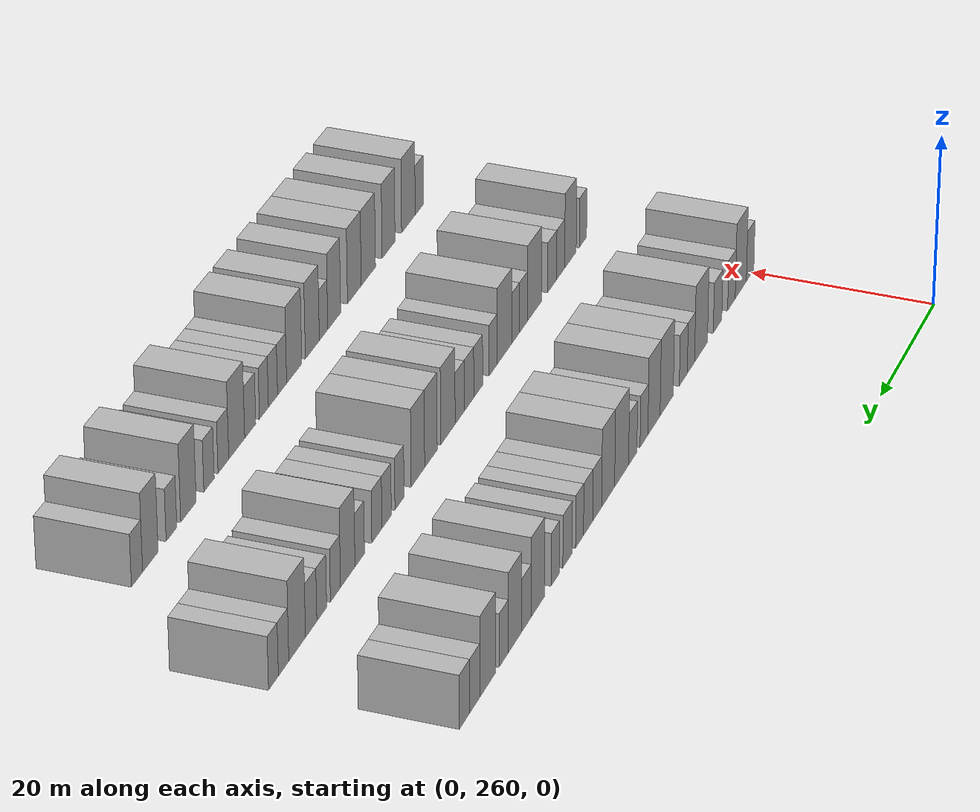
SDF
<sdf version="1.6">
 <world name="default">
  <model name="building_152">
   <static>1</static>
   <pose>25.0000 260.6562 0 0.000000 0.000000 0.000000</pose>
   <link name="link">
    <pose>0 0 3.00 0 0 0</pose>
    <collision name="collision"><geometry><box><size>10.0000 2.6528 6.0000</size></box></geometry></collision>
    <visual name="visual">
     <cast_shadows>0</cast_shadows>
     <geometry><box><size>10.0000 2.6528 6.0000</size></box></geometry>
     <material>
      <script>
       <uri>model://HANNAS_wall/materials/scripts</uri>
       <uri>model://HANNAS_wall/materials/textures</uri>
       <name>vrc/HANNAS_wall</name>
      </script>
     </material>
    </visual>
   </link>
  </model>
  <model name="building_153">
   <static>1</static>
   <pose>25.0000 263.9479 0 0.000000 0.000000 0.000000</pose>
   <link name="link">
    <pose>0 0 4.50 0 0 0</pose>
    <collision name="collision"><geometry><box><size>10.0000 3.9306 9.0000</size></box></geometry></collision>
    <visual name="visual">
     <cast_shadows>0</cast_shadows>
     <geometry><box><size>10.0000 3.9306 9.0000</size></box></geometry>
     <material>
      <script>
       <uri>model://HANNAS_wall/materials/scripts</uri>
       <uri>model://HANNAS_wall/materials/textures</uri>
       <name>vrc/HANNAS_wall</name>
      </script>
     </material>
    </visual>
   </link>
  </model>
  <model name="building_154">
   <static>1</static>
   <pose>25.0000 267.2325 0 0.000000 0.000000 0.000000</pose>
   <link name="link">
    <pose>0 0 3.00 0 0 0</pose>
    <collision name="collision"><geometry><box><size>10.0000 2.6387 6.0000</size></box></geometry></collision>
    <visual name="visual">
     <cast_shadows>0</cast_shadows>
     <geometry><box><size>10.0000 2.6387 6.0000</size></box></geometry>
     <material>
      <script>
       <uri>model://HANNAS_wall/materials/scripts</uri>
       <uri>model://HANNAS_wall/materials/textures</uri>
       <name>vrc/HANNAS_wall</name>
      </script>
     </material>
    </visual>
   </link>
  </model>
  <model name="building_155">
   <static>1</static>
   <pose>25.0000 272.0267 0 0.000000 0.000000 0.000000</pose>
   <link name="link">
    <pose>0 0 3.00 0 0 0</pose>
    <collision name="collision"><geometry><box><size>10.0000 2.9497 6.0000</size></box></geometry></collision>
    <visual name="visual">
     <cast_shadows>0</cast_shadows>
     <geometry><box><size>10.0000 2.9497 6.0000</size></box></geometry>
     <material>
      <script>
       <uri>model://HANNAS_wall/materials/scripts</uri>
       <uri>model://HANNAS_wall/materials/textures</uri>
       <name>vrc/HANNAS_wall</name>
      </script>
     </material>
    </visual>
   </link>
  </model>
  <model name="building_156">
   <static>1</static>
   <pose>25.0000 277.6796 0 0.000000 0.000000 0.000000</pose>
   <link name="link">
    <pose>0 0 4.50 0 0 0</pose>
    <collision name="collision"><geometry><box><size>10.0000 4.3561 9.0000</size></box></geometry></collision>
    <visual name="visual">
     <cast_shadows>0</cast_shadows>
     <geometry><box><size>10.0000 4.3561 9.0000</size></box></geometry>
     <material>
      <script>
       <uri>model://HANNAS_wall/materials/scripts</uri>
       <uri>model://HANNAS_wall/materials/textures</uri>
       <name>vrc/HANNAS_wall</name>
      </script>
     </material>
    </visual>
   </link>
  </model>
  <model name="building_157">
   <static>1</static>
   <pose>25.0000 281.0811 0 0.000000 0.000000 0.000000</pose>
   <link name="link">
    <pose>0 0 3.00 0 0 0</pose>
    <collision name="collision"><geometry><box><size>10.0000 2.4470 6.0000</size></box></geometry></collision>
    <visual name="visual">
     <cast_shadows>0</cast_shadows>
     <geometry><box><size>10.0000 2.4470 6.0000</size></box></geometry>
     <material>
      <script>
       <uri>model://HANNAS_wall/materials/scripts</uri>
       <uri>model://HANNAS_wall/materials/textures</uri>
       <name>vrc/HANNAS_wall</name>
      </script>
     </material>
    </visual>
   </link>
  </model>
  <model name="building_158">
   <static>1</static>
   <pose>25.0000 283.6265 0 0.000000 0.000000 0.000000</pose>
   <link name="link">
    <pose>0 0 3.00 0 0 0</pose>
    <collision name="collision"><geometry><box><size>10.0000 2.6438 6.0000</size></box></geometry></collision>
    <visual name="visual">
     <cast_shadows>0</cast_shadows>
     <geometry><box><size>10.0000 2.6438 6.0000</size></box></geometry>
     <material>
      <script>
       <uri>model://HANNAS_wall/materials/scripts</uri>
       <uri>model://HANNAS_wall/materials/textures</uri>
       <name>vrc/HANNAS_wall</name>
      </script>
     </material>
    </visual>
   </link>
  </model>
  <model name="building_159">
   <static>1</static>
   <pose>25.0000 289.1088 0 0.000000 0.000000 0.000000</pose>
   <link name="link">
    <pose>0 0 4.50 0 0 0</pose>
    <collision name="collision"><geometry><box><size>10.0000 4.3208 9.0000</size></box></geometry></collision>
    <visual name="visual">
     <cast_shadows>0</cast_shadows>
     <geometry><box><size>10.0000 4.3208 9.0000</size></box></geometry>
     <material>
      <script>
       <uri>model://HANNAS_wall/materials/scripts</uri>
       <uri>model://HANNAS_wall/materials/textures</uri>
       <name>vrc/HANNAS_wall</name>
      </script>
     </material>
    </visual>
   </link>
  </model>
  <model name="building_160">
   <static>1</static>
   <pose>25.0000 293.2338 0 0.000000 0.000000 0.000000</pose>
   <link name="link">
    <pose>0 0 4.50 0 0 0</pose>
    <collision name="collision"><geometry><box><size>10.0000 3.9292 9.0000</size></box></geometry></collision>
    <visual name="visual">
     <cast_shadows>0</cast_shadows>
     <geometry><box><size>10.0000 3.9292 9.0000</size></box></geometry>
     <material>
      <script>
       <uri>model://HANNAS_wall/materials/scripts</uri>
       <uri>model://HANNAS_wall/materials/textures</uri>
       <name>vrc/HANNAS_wall</name>
      </script>
     </material>
    </visual>
   </link>
  </model>
  <model name="building_161">
   <static>1</static>
   <pose>25.0000 296.4570 0 0.000000 0.000000 0.000000</pose>
   <link name="link">
    <pose>0 0 3.00 0 0 0</pose>
    <collision name="collision"><geometry><box><size>10.0000 2.5174 6.0000</size></box></geometry></collision>
    <visual name="visual">
     <cast_shadows>0</cast_shadows>
     <geometry><box><size>10.0000 2.5174 6.0000</size></box></geometry>
     <material>
      <script>
       <uri>model://HANNAS_wall/materials/scripts</uri>
       <uri>model://HANNAS_wall/materials/textures</uri>
       <name>vrc/HANNAS_wall</name>
      </script>
     </material>
    </visual>
   </link>
  </model>
  <model name="building_162">
   <static>1</static>
   <pose>25.0000 300.0321 0 0.000000 0.000000 0.000000</pose>
   <link name="link">
    <pose>0 0 3.00 0 0 0</pose>
    <collision name="collision"><geometry><box><size>10.0000 2.6328 6.0000</size></box></geometry></collision>
    <visual name="visual">
     <cast_shadows>0</cast_shadows>
     <geometry><box><size>10.0000 2.6328 6.0000</size></box></geometry>
     <material>
      <script>
       <uri>model://HANNAS_wall/materials/scripts</uri>
       <uri>model://HANNAS_wall/materials/textures</uri>
       <name>vrc/HANNAS_wall</name>
      </script>
     </material>
    </visual>
   </link>
  </model>
  <model name="building_163">
   <static>1</static>
   <pose>25.0000 303.5364 0 0.000000 0.000000 0.000000</pose>
   <link name="link">
    <pose>0 0 4.50 0 0 0</pose>
    <collision name="collision"><geometry><box><size>10.0000 4.3758 9.0000</size></box></geometry></collision>
    <visual name="visual">
     <cast_shadows>0</cast_shadows>
     <geometry><box><size>10.0000 4.3758 9.0000</size></box></geometry>
     <material>
      <script>
       <uri>model://HANNAS_wall/materials/scripts</uri>
       <uri>model://HANNAS_wall/materials/textures</uri>
       <name>vrc/HANNAS_wall</name>
      </script>
     </material>
    </visual>
   </link>
  </model>
  <model name="building_164">
   <static>1</static>
   <pose>25.0000 307.7463 0 0.000000 0.000000 0.000000</pose>
   <link name="link">
    <pose>0 0 4.50 0 0 0</pose>
    <collision name="collision"><geometry><box><size>10.0000 4.0440 9.0000</size></box></geometry></collision>
    <visual name="visual">
     <cast_shadows>0</cast_shadows>
     <geometry><box><size>10.0000 4.0440 9.0000</size></box></geometry>
     <material>
      <script>
       <uri>model://HANNAS_wall/materials/scripts</uri>
       <uri>model://HANNAS_wall/materials/textures</uri>
       <name>vrc/HANNAS_wall</name>
      </script>
     </material>
    </visual>
   </link>
  </model>
  <model name="building_165">
   <static>1</static>
   <pose>25.0000 311.1221 0 0.000000 0.000000 0.000000</pose>
   <link name="link">
    <pose>0 0 3.00 0 0 0</pose>
    <collision name="collision"><geometry><box><size>10.0000 2.7077 6.0000</size></box></geometry></collision>
    <visual name="visual">
     <cast_shadows>0</cast_shadows>
     <geometry><box><size>10.0000 2.7077 6.0000</size></box></geometry>
     <material>
      <script>
       <uri>model://HANNAS_wall/materials/scripts</uri>
       <uri>model://HANNAS_wall/materials/textures</uri>
       <name>vrc/HANNAS_wall</name>
      </script>
     </material>
    </visual>
   </link>
  </model>
  <model name="building_166">
   <static>1</static>
   <pose>25.0000 313.8813 0 0.000000 0.000000 0.000000</pose>
   <link name="link">
    <pose>0 0 3.00 0 0 0</pose>
    <collision name="collision"><geometry><box><size>10.0000 2.8106 6.0000</size></box></geometry></collision>
    <visual name="visual">
     <cast_shadows>0</cast_shadows>
     <geometry><box><size>10.0000 2.8106 6.0000</size></box></geometry>
     <material>
      <script>
       <uri>model://HANNAS_wall/materials/scripts</uri>
       <uri>model://HANNAS_wall/materials/textures</uri>
       <name>vrc/HANNAS_wall</name>
      </script>
     </material>
    </visual>
   </link>
  </model>
  <model name="building_167">
   <static>1</static>
   <pose>25.0000 316.4950 0 0.000000 0.000000 0.000000</pose>
   <link name="link">
    <pose>0 0 3.00 0 0 0</pose>
    <collision name="collision"><geometry><box><size>10.0000 2.4168 6.0000</size></box></geometry></collision>
    <visual name="visual">
     <cast_shadows>0</cast_shadows>
     <geometry><box><size>10.0000 2.4168 6.0000</size></box></geometry>
     <material>
      <script>
       <uri>model://HANNAS_wall/materials/scripts</uri>
       <uri>model://HANNAS_wall/materials/textures</uri>
       <name>vrc/HANNAS_wall</name>
      </script>
     </material>
    </visual>
   </link>
  </model>
  <model name="building_168">
   <static>1</static>
   <pose>25.0000 320.0985 0 0.000000 0.000000 0.000000</pose>
   <link name="link">
    <pose>0 0 3.00 0 0 0</pose>
    <collision name="collision"><geometry><box><size>10.0000 2.7902 6.0000</size></box></geometry></collision>
    <visual name="visual">
     <cast_shadows>0</cast_shadows>
     <geometry><box><size>10.0000 2.7902 6.0000</size></box></geometry>
     <material>
      <script>
       <uri>model://HANNAS_wall/materials/scripts</uri>
       <uri>model://HANNAS_wall/materials/textures</uri>
       <name>vrc/HANNAS_wall</name>
      </script>
     </material>
    </visual>
   </link>
  </model>
  <model name="building_169">
   <static>1</static>
   <pose>25.0000 323.6983 0 0.000000 0.000000 0.000000</pose>
   <link name="link">
    <pose>0 0 3.00 0 0 0</pose>
    <collision name="collision"><geometry><box><size>10.0000 2.4095 6.0000</size></box></geometry></collision>
    <visual name="visual">
     <cast_shadows>0</cast_shadows>
     <geometry><box><size>10.0000 2.4095 6.0000</size></box></geometry>
     <material>
      <script>
       <uri>model://HANNAS_wall/materials/scripts</uri>
       <uri>model://HANNAS_wall/materials/textures</uri>
       <name>vrc/HANNAS_wall</name>
      </script>
     </material>
    </visual>
   </link>
  </model>
  <model name="building_170">
   <static>1</static>
   <pose>25.0000 328.8222 0 0.000000 0.000000 0.000000</pose>
   <link name="link">
    <pose>0 0 4.50 0 0 0</pose>
    <collision name="collision"><geometry><box><size>10.0000 3.8383 9.0000</size></box></geometry></collision>
    <visual name="visual">
     <cast_shadows>0</cast_shadows>
     <geometry><box><size>10.0000 3.8383 9.0000</size></box></geometry>
     <material>
      <script>
       <uri>model://HANNAS_wall/materials/scripts</uri>
       <uri>model://HANNAS_wall/materials/textures</uri>
       <name>vrc/HANNAS_wall</name>
      </script>
     </material>
    </visual>
   </link>
  </model>
  <model name="building_171">
   <static>1</static>
   <pose>25.0000 332.1052 0 0.000000 0.000000 0.000000</pose>
   <link name="link">
    <pose>0 0 3.00 0 0 0</pose>
    <collision name="collision"><geometry><box><size>10.0000 2.7276 6.0000</size></box></geometry></collision>
    <visual name="visual">
     <cast_shadows>0</cast_shadows>
     <geometry><box><size>10.0000 2.7276 6.0000</size></box></geometry>
     <material>
      <script>
       <uri>model://HANNAS_wall/materials/scripts</uri>
       <uri>model://HANNAS_wall/materials/textures</uri>
       <name>vrc/HANNAS_wall</name>
      </script>
     </material>
    </visual>
   </link>
  </model>
  <model name="building_172">
   <static>1</static>
   <pose>25.0000 335.3537 0 0.000000 0.000000 0.000000</pose>
   <link name="link">
    <pose>0 0 4.50 0 0 0</pose>
    <collision name="collision"><geometry><box><size>10.0000 3.7694 9.0000</size></box></geometry></collision>
    <visual name="visual">
     <cast_shadows>0</cast_shadows>
     <geometry><box><size>10.0000 3.7694 9.0000</size></box></geometry>
     <material>
      <script>
       <uri>model://HANNAS_wall/materials/scripts</uri>
       <uri>model://HANNAS_wall/materials/textures</uri>
       <name>vrc/HANNAS_wall</name>
      </script>
     </material>
    </visual>
   </link>
  </model>
  <model name="building_173">
   <static>1</static>
   <pose>25.0000 338.5391 0 0.000000 0.000000 0.000000</pose>
   <link name="link">
    <pose>0 0 3.00 0 0 0</pose>
    <collision name="collision"><geometry><box><size>10.0000 2.6015 6.0000</size></box></geometry></collision>
    <visual name="visual">
     <cast_shadows>0</cast_shadows>
     <geometry><box><size>10.0000 2.6015 6.0000</size></box></geometry>
     <material>
      <script>
       <uri>model://HANNAS_wall/materials/scripts</uri>
       <uri>model://HANNAS_wall/materials/textures</uri>
       <name>vrc/HANNAS_wall</name>
      </script>
     </material>
    </visual>
   </link>
  </model>
  <model name="building_174">
   <static>1</static>
   <pose>25.0000 343.0338 0 0.000000 0.000000 0.000000</pose>
   <link name="link">
    <pose>0 0 4.50 0 0 0</pose>
    <collision name="collision"><geometry><box><size>10.0000 4.3879 9.0000</size></box></geometry></collision>
    <visual name="visual">
     <cast_shadows>0</cast_shadows>
     <geometry><box><size>10.0000 4.3879 9.0000</size></box></geometry>
     <material>
      <script>
       <uri>model://HANNAS_wall/materials/scripts</uri>
       <uri>model://HANNAS_wall/materials/textures</uri>
       <name>vrc/HANNAS_wall</name>
      </script>
     </material>
    </visual>
   </link>
  </model>
  <model name="building_175">
   <static>1</static>
   <pose>25.0000 346.5898 0 0.000000 0.000000 0.000000</pose>
   <link name="link">
    <pose>0 0 3.00 0 0 0</pose>
    <collision name="collision"><geometry><box><size>10.0000 2.7241 6.0000</size></box></geometry></collision>
    <visual name="visual">
     <cast_shadows>0</cast_shadows>
     <geometry><box><size>10.0000 2.7241 6.0000</size></box></geometry>
     <material>
      <script>
       <uri>model://HANNAS_wall/materials/scripts</uri>
       <uri>model://HANNAS_wall/materials/textures</uri>
       <name>vrc/HANNAS_wall</name>
      </script>
     </material>
    </visual>
   </link>
  </model>
  <model name="building_176">
   <static>1</static>
   <pose>25.0000 349.3690 0 0.000000 0.000000 0.000000</pose>
   <link name="link">
    <pose>0 0 3.00 0 0 0</pose>
    <collision name="collision"><geometry><box><size>10.0000 2.8345 6.0000</size></box></geometry></collision>
    <visual name="visual">
     <cast_shadows>0</cast_shadows>
     <geometry><box><size>10.0000 2.8345 6.0000</size></box></geometry>
     <material>
      <script>
       <uri>model://HANNAS_wall/materials/scripts</uri>
       <uri>model://HANNAS_wall/materials/textures</uri>
       <name>vrc/HANNAS_wall</name>
      </script>
     </material>
    </visual>
   </link>
  </model>
  <model name="building_331">
   <static>1</static>
   <pose>44.0000 259.7455 0 0.000000 0.000000 0.000000</pose>
   <link name="link">
    <pose>0 0 3.00 0 0 0</pose>
    <collision name="collision"><geometry><box><size>10.0000 2.4365 6.0000</size></box></geometry></collision>
    <visual name="visual">
     <cast_shadows>0</cast_shadows>
     <geometry><box><size>10.0000 2.4365 6.0000</size></box></geometry>
     <material>
      <script>
       <uri>model://HANNAS_wall/materials/scripts</uri>
       <uri>model://HANNAS_wall/materials/textures</uri>
       <name>vrc/HANNAS_wall</name>
      </script>
     </material>
    </visual>
   </link>
  </model>
  <model name="building_332">
   <static>1</static>
   <pose>44.0000 263.8436 0 0.000000 0.000000 0.000000</pose>
   <link name="link">
    <pose>0 0 4.50 0 0 0</pose>
    <collision name="collision"><geometry><box><size>10.0000 3.7598 9.0000</size></box></geometry></collision>
    <visual name="visual">
     <cast_shadows>0</cast_shadows>
     <geometry><box><size>10.0000 3.7598 9.0000</size></box></geometry>
     <material>
      <script>
       <uri>model://HANNAS_wall/materials/scripts</uri>
       <uri>model://HANNAS_wall/materials/textures</uri>
       <name>vrc/HANNAS_wall</name>
      </script>
     </material>
    </visual>
   </link>
  </model>
  <model name="building_333">
   <static>1</static>
   <pose>44.0000 267.0343 0 0.000000 0.000000 0.000000</pose>
   <link name="link">
    <pose>0 0 3.00 0 0 0</pose>
    <collision name="collision"><geometry><box><size>10.0000 2.6216 6.0000</size></box></geometry></collision>
    <visual name="visual">
     <cast_shadows>0</cast_shadows>
     <geometry><box><size>10.0000 2.6216 6.0000</size></box></geometry>
     <material>
      <script>
       <uri>model://HANNAS_wall/materials/scripts</uri>
       <uri>model://HANNAS_wall/materials/textures</uri>
       <name>vrc/HANNAS_wall</name>
      </script>
     </material>
    </visual>
   </link>
  </model>
  <model name="building_334">
   <static>1</static>
   <pose>44.0000 269.7810 0 0.000000 0.000000 0.000000</pose>
   <link name="link">
    <pose>0 0 3.00 0 0 0</pose>
    <collision name="collision"><geometry><box><size>10.0000 2.8717 6.0000</size></box></geometry></collision>
    <visual name="visual">
     <cast_shadows>0</cast_shadows>
     <geometry><box><size>10.0000 2.8717 6.0000</size></box></geometry>
     <material>
      <script>
       <uri>model://HANNAS_wall/materials/scripts</uri>
       <uri>model://HANNAS_wall/materials/textures</uri>
       <name>vrc/HANNAS_wall</name>
      </script>
     </material>
    </visual>
   </link>
  </model>
  <model name="building_335">
   <static>1</static>
   <pose>44.0000 275.4062 0 0.000000 0.000000 0.000000</pose>
   <link name="link">
    <pose>0 0 4.50 0 0 0</pose>
    <collision name="collision"><geometry><box><size>10.0000 4.3787 9.0000</size></box></geometry></collision>
    <visual name="visual">
     <cast_shadows>0</cast_shadows>
     <geometry><box><size>10.0000 4.3787 9.0000</size></box></geometry>
     <material>
      <script>
       <uri>model://HANNAS_wall/materials/scripts</uri>
       <uri>model://HANNAS_wall/materials/textures</uri>
       <name>vrc/HANNAS_wall</name>
      </script>
     </material>
    </visual>
   </link>
  </model>
  <model name="building_336">
   <static>1</static>
   <pose>44.0000 278.8624 0 0.000000 0.000000 0.000000</pose>
   <link name="link">
    <pose>0 0 3.00 0 0 0</pose>
    <collision name="collision"><geometry><box><size>10.0000 2.5337 6.0000</size></box></geometry></collision>
    <visual name="visual">
     <cast_shadows>0</cast_shadows>
     <geometry><box><size>10.0000 2.5337 6.0000</size></box></geometry>
     <material>
      <script>
       <uri>model://HANNAS_wall/materials/scripts</uri>
       <uri>model://HANNAS_wall/materials/textures</uri>
       <name>vrc/HANNAS_wall</name>
      </script>
     </material>
    </visual>
   </link>
  </model>
  <model name="building_337">
   <static>1</static>
   <pose>44.0000 281.3531 0 0.000000 0.000000 0.000000</pose>
   <link name="link">
    <pose>0 0 3.00 0 0 0</pose>
    <collision name="collision"><geometry><box><size>10.0000 2.4475 6.0000</size></box></geometry></collision>
    <visual name="visual">
     <cast_shadows>0</cast_shadows>
     <geometry><box><size>10.0000 2.4475 6.0000</size></box></geometry>
     <material>
      <script>
       <uri>model://HANNAS_wall/materials/scripts</uri>
       <uri>model://HANNAS_wall/materials/textures</uri>
       <name>vrc/HANNAS_wall</name>
      </script>
     </material>
    </visual>
   </link>
  </model>
  <model name="building_338">
   <static>1</static>
   <pose>44.0000 284.8020 0 0.000000 0.000000 0.000000</pose>
   <link name="link">
    <pose>0 0 4.50 0 0 0</pose>
    <collision name="collision"><geometry><box><size>10.0000 4.4504 9.0000</size></box></geometry></collision>
    <visual name="visual">
     <cast_shadows>0</cast_shadows>
     <geometry><box><size>10.0000 4.4504 9.0000</size></box></geometry>
     <material>
      <script>
       <uri>model://HANNAS_wall/materials/scripts</uri>
       <uri>model://HANNAS_wall/materials/textures</uri>
       <name>vrc/HANNAS_wall</name>
      </script>
     </material>
    </visual>
   </link>
  </model>
  <model name="building_339">
   <static>1</static>
   <pose>44.0000 288.2627 0 0.000000 0.000000 0.000000</pose>
   <link name="link">
    <pose>0 0 3.00 0 0 0</pose>
    <collision name="collision"><geometry><box><size>10.0000 2.4711 6.0000</size></box></geometry></collision>
    <visual name="visual">
     <cast_shadows>0</cast_shadows>
     <geometry><box><size>10.0000 2.4711 6.0000</size></box></geometry>
     <material>
      <script>
       <uri>model://HANNAS_wall/materials/scripts</uri>
       <uri>model://HANNAS_wall/materials/textures</uri>
       <name>vrc/HANNAS_wall</name>
      </script>
     </material>
    </visual>
   </link>
  </model>
  <model name="building_340">
   <static>1</static>
   <pose>44.0000 292.8372 0 0.000000 0.000000 0.000000</pose>
   <link name="link">
    <pose>0 0 3.00 0 0 0</pose>
    <collision name="collision"><geometry><box><size>10.0000 2.6779 6.0000</size></box></geometry></collision>
    <visual name="visual">
     <cast_shadows>0</cast_shadows>
     <geometry><box><size>10.0000 2.6779 6.0000</size></box></geometry>
     <material>
      <script>
       <uri>model://HANNAS_wall/materials/scripts</uri>
       <uri>model://HANNAS_wall/materials/textures</uri>
       <name>vrc/HANNAS_wall</name>
      </script>
     </material>
    </visual>
   </link>
  </model>
  <model name="building_341">
   <static>1</static>
   <pose>44.0000 295.6051 0 0.000000 0.000000 0.000000</pose>
   <link name="link">
    <pose>0 0 3.00 0 0 0</pose>
    <collision name="collision"><geometry><box><size>10.0000 2.8579 6.0000</size></box></geometry></collision>
    <visual name="visual">
     <cast_shadows>0</cast_shadows>
     <geometry><box><size>10.0000 2.8579 6.0000</size></box></geometry>
     <material>
      <script>
       <uri>model://HANNAS_wall/materials/scripts</uri>
       <uri>model://HANNAS_wall/materials/textures</uri>
       <name>vrc/HANNAS_wall</name>
      </script>
     </material>
    </visual>
   </link>
  </model>
  <model name="building_342">
   <static>1</static>
   <pose>44.0000 298.3727 0 0.000000 0.000000 0.000000</pose>
   <link name="link">
    <pose>0 0 3.00 0 0 0</pose>
    <collision name="collision"><geometry><box><size>10.0000 2.6772 6.0000</size></box></geometry></collision>
    <visual name="visual">
     <cast_shadows>0</cast_shadows>
     <geometry><box><size>10.0000 2.6772 6.0000</size></box></geometry>
     <material>
      <script>
       <uri>model://HANNAS_wall/materials/scripts</uri>
       <uri>model://HANNAS_wall/materials/textures</uri>
       <name>vrc/HANNAS_wall</name>
      </script>
     </material>
    </visual>
   </link>
  </model>
  <model name="building_343">
   <static>1</static>
   <pose>44.0000 301.8395 0 0.000000 0.000000 0.000000</pose>
   <link name="link">
    <pose>0 0 4.50 0 0 0</pose>
    <collision name="collision"><geometry><box><size>10.0000 4.2565 9.0000</size></box></geometry></collision>
    <visual name="visual">
     <cast_shadows>0</cast_shadows>
     <geometry><box><size>10.0000 4.2565 9.0000</size></box></geometry>
     <material>
      <script>
       <uri>model://HANNAS_wall/materials/scripts</uri>
       <uri>model://HANNAS_wall/materials/textures</uri>
       <name>vrc/HANNAS_wall</name>
      </script>
     </material>
    </visual>
   </link>
  </model>
  <model name="building_344">
   <static>1</static>
   <pose>44.0000 306.7835 0 0.000000 0.000000 0.000000</pose>
   <link name="link">
    <pose>0 0 4.50 0 0 0</pose>
    <collision name="collision"><geometry><box><size>10.0000 3.6314 9.0000</size></box></geometry></collision>
    <visual name="visual">
     <cast_shadows>0</cast_shadows>
     <geometry><box><size>10.0000 3.6314 9.0000</size></box></geometry>
     <material>
      <script>
       <uri>model://HANNAS_wall/materials/scripts</uri>
       <uri>model://HANNAS_wall/materials/textures</uri>
       <name>vrc/HANNAS_wall</name>
      </script>
     </material>
    </visual>
   </link>
  </model>
  <model name="building_345">
   <static>1</static>
   <pose>44.0000 310.5303 0 0.000000 0.000000 0.000000</pose>
   <link name="link">
    <pose>0 0 4.50 0 0 0</pose>
    <collision name="collision"><geometry><box><size>10.0000 3.8622 9.0000</size></box></geometry></collision>
    <visual name="visual">
     <cast_shadows>0</cast_shadows>
     <geometry><box><size>10.0000 3.8622 9.0000</size></box></geometry>
     <material>
      <script>
       <uri>model://HANNAS_wall/materials/scripts</uri>
       <uri>model://HANNAS_wall/materials/textures</uri>
       <name>vrc/HANNAS_wall</name>
      </script>
     </material>
    </visual>
   </link>
  </model>
  <model name="building_346">
   <static>1</static>
   <pose>44.0000 315.7579 0 0.000000 0.000000 0.000000</pose>
   <link name="link">
    <pose>0 0 3.00 0 0 0</pose>
    <collision name="collision"><geometry><box><size>10.0000 2.5930 6.0000</size></box></geometry></collision>
    <visual name="visual">
     <cast_shadows>0</cast_shadows>
     <geometry><box><size>10.0000 2.5930 6.0000</size></box></geometry>
     <material>
      <script>
       <uri>model://HANNAS_wall/materials/scripts</uri>
       <uri>model://HANNAS_wall/materials/textures</uri>
       <name>vrc/HANNAS_wall</name>
      </script>
     </material>
    </visual>
   </link>
  </model>
  <model name="building_347">
   <static>1</static>
   <pose>44.0000 319.3584 0 0.000000 0.000000 0.000000</pose>
   <link name="link">
    <pose>0 0 3.00 0 0 0</pose>
    <collision name="collision"><geometry><box><size>10.0000 2.6078 6.0000</size></box></geometry></collision>
    <visual name="visual">
     <cast_shadows>0</cast_shadows>
     <geometry><box><size>10.0000 2.6078 6.0000</size></box></geometry>
     <material>
      <script>
       <uri>model://HANNAS_wall/materials/scripts</uri>
       <uri>model://HANNAS_wall/materials/textures</uri>
       <name>vrc/HANNAS_wall</name>
      </script>
     </material>
    </visual>
   </link>
  </model>
  <model name="building_348">
   <static>1</static>
   <pose>44.0000 322.0684 0 0.000000 0.000000 0.000000</pose>
   <link name="link">
    <pose>0 0 3.00 0 0 0</pose>
    <collision name="collision"><geometry><box><size>10.0000 2.8123 6.0000</size></box></geometry></collision>
    <visual name="visual">
     <cast_shadows>0</cast_shadows>
     <geometry><box><size>10.0000 2.8123 6.0000</size></box></geometry>
     <material>
      <script>
       <uri>model://HANNAS_wall/materials/scripts</uri>
       <uri>model://HANNAS_wall/materials/textures</uri>
       <name>vrc/HANNAS_wall</name>
      </script>
     </material>
    </visual>
   </link>
  </model>
  <model name="building_349">
   <static>1</static>
   <pose>44.0000 326.7690 0 0.000000 0.000000 0.000000</pose>
   <link name="link">
    <pose>0 0 3.00 0 0 0</pose>
    <collision name="collision"><geometry><box><size>10.0000 2.5888 6.0000</size></box></geometry></collision>
    <visual name="visual">
     <cast_shadows>0</cast_shadows>
     <geometry><box><size>10.0000 2.5888 6.0000</size></box></geometry>
     <material>
      <script>
       <uri>model://HANNAS_wall/materials/scripts</uri>
       <uri>model://HANNAS_wall/materials/textures</uri>
       <name>vrc/HANNAS_wall</name>
      </script>
     </material>
    </visual>
   </link>
  </model>
  <model name="building_350">
   <static>1</static>
   <pose>44.0000 330.0136 0 0.000000 0.000000 0.000000</pose>
   <link name="link">
    <pose>0 0 4.50 0 0 0</pose>
    <collision name="collision"><geometry><box><size>10.0000 3.9004 9.0000</size></box></geometry></collision>
    <visual name="visual">
     <cast_shadows>0</cast_shadows>
     <geometry><box><size>10.0000 3.9004 9.0000</size></box></geometry>
     <material>
      <script>
       <uri>model://HANNAS_wall/materials/scripts</uri>
       <uri>model://HANNAS_wall/materials/textures</uri>
       <name>vrc/HANNAS_wall</name>
      </script>
     </material>
    </visual>
   </link>
  </model>
  <model name="building_351">
   <static>1</static>
   <pose>44.0000 333.3136 0 0.000000 0.000000 0.000000</pose>
   <link name="link">
    <pose>0 0 3.00 0 0 0</pose>
    <collision name="collision"><geometry><box><size>10.0000 2.6996 6.0000</size></box></geometry></collision>
    <visual name="visual">
     <cast_shadows>0</cast_shadows>
     <geometry><box><size>10.0000 2.6996 6.0000</size></box></geometry>
     <material>
      <script>
       <uri>model://HANNAS_wall/materials/scripts</uri>
       <uri>model://HANNAS_wall/materials/textures</uri>
       <name>vrc/HANNAS_wall</name>
      </script>
     </material>
    </visual>
   </link>
  </model>
  <model name="building_352">
   <static>1</static>
   <pose>44.0000 336.9551 0 0.000000 0.000000 0.000000</pose>
   <link name="link">
    <pose>0 0 3.00 0 0 0</pose>
    <collision name="collision"><geometry><box><size>10.0000 2.5833 6.0000</size></box></geometry></collision>
    <visual name="visual">
     <cast_shadows>0</cast_shadows>
     <geometry><box><size>10.0000 2.5833 6.0000</size></box></geometry>
     <material>
      <script>
       <uri>model://HANNAS_wall/materials/scripts</uri>
       <uri>model://HANNAS_wall/materials/textures</uri>
       <name>vrc/HANNAS_wall</name>
      </script>
     </material>
    </visual>
   </link>
  </model>
  <model name="building_353">
   <static>1</static>
   <pose>44.0000 339.7308 0 0.000000 0.000000 0.000000</pose>
   <link name="link">
    <pose>0 0 3.00 0 0 0</pose>
    <collision name="collision"><geometry><box><size>10.0000 2.9680 6.0000</size></box></geometry></collision>
    <visual name="visual">
     <cast_shadows>0</cast_shadows>
     <geometry><box><size>10.0000 2.9680 6.0000</size></box></geometry>
     <material>
      <script>
       <uri>model://HANNAS_wall/materials/scripts</uri>
       <uri>model://HANNAS_wall/materials/textures</uri>
       <name>vrc/HANNAS_wall</name>
      </script>
     </material>
    </visual>
   </link>
  </model>
  <model name="building_354">
   <static>1</static>
   <pose>44.0000 343.3724 0 0.000000 0.000000 0.000000</pose>
   <link name="link">
    <pose>0 0 4.50 0 0 0</pose>
    <collision name="collision"><geometry><box><size>10.0000 4.3152 9.0000</size></box></geometry></collision>
    <visual name="visual">
     <cast_shadows>0</cast_shadows>
     <geometry><box><size>10.0000 4.3152 9.0000</size></box></geometry>
     <material>
      <script>
       <uri>model://HANNAS_wall/materials/scripts</uri>
       <uri>model://HANNAS_wall/materials/textures</uri>
       <name>vrc/HANNAS_wall</name>
      </script>
     </material>
    </visual>
   </link>
  </model>
  <model name="building_355">
   <static>1</static>
   <pose>44.0000 346.8639 0 0.000000 0.000000 0.000000</pose>
   <link name="link">
    <pose>0 0 3.00 0 0 0</pose>
    <collision name="collision"><geometry><box><size>10.0000 2.6679 6.0000</size></box></geometry></collision>
    <visual name="visual">
     <cast_shadows>0</cast_shadows>
     <geometry><box><size>10.0000 2.6679 6.0000</size></box></geometry>
     <material>
      <script>
       <uri>model://HANNAS_wall/materials/scripts</uri>
       <uri>model://HANNAS_wall/materials/textures</uri>
       <name>vrc/HANNAS_wall</name>
      </script>
     </material>
    </visual>
   </link>
  </model>
  <model name="building_356">
   <static>1</static>
   <pose>44.0000 349.4435 0 0.000000 0.000000 0.000000</pose>
   <link name="link">
    <pose>0 0 3.00 0 0 0</pose>
    <collision name="collision"><geometry><box><size>10.0000 2.4914 6.0000</size></box></geometry></collision>
    <visual name="visual">
     <cast_shadows>0</cast_shadows>
     <geometry><box><size>10.0000 2.4914 6.0000</size></box></geometry>
     <material>
      <script>
       <uri>model://HANNAS_wall/materials/scripts</uri>
       <uri>model://HANNAS_wall/materials/textures</uri>
       <name>vrc/HANNAS_wall</name>
      </script>
     </material>
    </visual>
   </link>
  </model>
  <model name="building_510">
   <static>1</static>
   <pose>63.0000 258.7900 0 0.000000 0.000000 0.000000</pose>
   <link name="link">
    <pose>0 0 3.00 0 0 0</pose>
    <collision name="collision"><geometry><box><size>10.0000 2.5789 6.0000</size></box></geometry></collision>
    <visual name="visual">
     <cast_shadows>0</cast_shadows>
     <geometry><box><size>10.0000 2.5789 6.0000</size></box></geometry>
     <material>
      <script>
       <uri>model://HANNAS_wall/materials/scripts</uri>
       <uri>model://HANNAS_wall/materials/textures</uri>
       <name>vrc/HANNAS_wall</name>
      </script>
     </material>
    </visual>
   </link>
  </model>
  <model name="building_511">
   <static>1</static>
   <pose>63.0000 262.1908 0 0.000000 0.000000 0.000000</pose>
   <link name="link">
    <pose>0 0 4.50 0 0 0</pose>
    <collision name="collision"><geometry><box><size>10.0000 4.2228 9.0000</size></box></geometry></collision>
    <visual name="visual">
     <cast_shadows>0</cast_shadows>
     <geometry><box><size>10.0000 4.2228 9.0000</size></box></geometry>
     <material>
      <script>
       <uri>model://HANNAS_wall/materials/scripts</uri>
       <uri>model://HANNAS_wall/materials/textures</uri>
       <name>vrc/HANNAS_wall</name>
      </script>
     </material>
    </visual>
   </link>
  </model>
  <model name="building_512">
   <static>1</static>
   <pose>63.0000 268.2525 0 0.000000 0.000000 0.000000</pose>
   <link name="link">
    <pose>0 0 4.50 0 0 0</pose>
    <collision name="collision"><geometry><box><size>10.0000 3.9005 9.0000</size></box></geometry></collision>
    <visual name="visual">
     <cast_shadows>0</cast_shadows>
     <geometry><box><size>10.0000 3.9005 9.0000</size></box></geometry>
     <material>
      <script>
       <uri>model://HANNAS_wall/materials/scripts</uri>
       <uri>model://HANNAS_wall/materials/textures</uri>
       <name>vrc/HANNAS_wall</name>
      </script>
     </material>
    </visual>
   </link>
  </model>
  <model name="building_513">
   <static>1</static>
   <pose>63.0000 274.3253 0 0.000000 0.000000 0.000000</pose>
   <link name="link">
    <pose>0 0 4.50 0 0 0</pose>
    <collision name="collision"><geometry><box><size>10.0000 4.2452 9.0000</size></box></geometry></collision>
    <visual name="visual">
     <cast_shadows>0</cast_shadows>
     <geometry><box><size>10.0000 4.2452 9.0000</size></box></geometry>
     <material>
      <script>
       <uri>model://HANNAS_wall/materials/scripts</uri>
       <uri>model://HANNAS_wall/materials/textures</uri>
       <name>vrc/HANNAS_wall</name>
      </script>
     </material>
    </visual>
   </link>
  </model>
  <model name="building_514">
   <static>1</static>
   <pose>63.0000 278.4736 0 0.000000 0.000000 0.000000</pose>
   <link name="link">
    <pose>0 0 4.50 0 0 0</pose>
    <collision name="collision"><geometry><box><size>10.0000 4.0515 9.0000</size></box></geometry></collision>
    <visual name="visual">
     <cast_shadows>0</cast_shadows>
     <geometry><box><size>10.0000 4.0515 9.0000</size></box></geometry>
     <material>
      <script>
       <uri>model://HANNAS_wall/materials/scripts</uri>
       <uri>model://HANNAS_wall/materials/textures</uri>
       <name>vrc/HANNAS_wall</name>
      </script>
     </material>
    </visual>
   </link>
  </model>
  <model name="building_515">
   <static>1</static>
   <pose>63.0000 284.3612 0 0.000000 0.000000 0.000000</pose>
   <link name="link">
    <pose>0 0 4.50 0 0 0</pose>
    <collision name="collision"><geometry><box><size>10.0000 3.7237 9.0000</size></box></geometry></collision>
    <visual name="visual">
     <cast_shadows>0</cast_shadows>
     <geometry><box><size>10.0000 3.7237 9.0000</size></box></geometry>
     <material>
      <script>
       <uri>model://HANNAS_wall/materials/scripts</uri>
       <uri>model://HANNAS_wall/materials/textures</uri>
       <name>vrc/HANNAS_wall</name>
      </script>
     </material>
    </visual>
   </link>
  </model>
  <model name="building_516">
   <static>1</static>
   <pose>63.0000 287.4367 0 0.000000 0.000000 0.000000</pose>
   <link name="link">
    <pose>0 0 3.00 0 0 0</pose>
    <collision name="collision"><geometry><box><size>10.0000 2.4273 6.0000</size></box></geometry></collision>
    <visual name="visual">
     <cast_shadows>0</cast_shadows>
     <geometry><box><size>10.0000 2.4273 6.0000</size></box></geometry>
     <material>
      <script>
       <uri>model://HANNAS_wall/materials/scripts</uri>
       <uri>model://HANNAS_wall/materials/textures</uri>
       <name>vrc/HANNAS_wall</name>
      </script>
     </material>
    </visual>
   </link>
  </model>
  <model name="building_517">
   <static>1</static>
   <pose>63.0000 290.6437 0 0.000000 0.000000 0.000000</pose>
   <link name="link">
    <pose>0 0 4.50 0 0 0</pose>
    <collision name="collision"><geometry><box><size>10.0000 3.9866 9.0000</size></box></geometry></collision>
    <visual name="visual">
     <cast_shadows>0</cast_shadows>
     <geometry><box><size>10.0000 3.9866 9.0000</size></box></geometry>
     <material>
      <script>
       <uri>model://HANNAS_wall/materials/scripts</uri>
       <uri>model://HANNAS_wall/materials/textures</uri>
       <name>vrc/HANNAS_wall</name>
      </script>
     </material>
    </visual>
   </link>
  </model>
  <model name="building_518">
   <static>1</static>
   <pose>63.0000 295.7679 0 0.000000 0.000000 0.000000</pose>
   <link name="link">
    <pose>0 0 4.50 0 0 0</pose>
    <collision name="collision"><geometry><box><size>10.0000 4.2618 9.0000</size></box></geometry></collision>
    <visual name="visual">
     <cast_shadows>0</cast_shadows>
     <geometry><box><size>10.0000 4.2618 9.0000</size></box></geometry>
     <material>
      <script>
       <uri>model://HANNAS_wall/materials/scripts</uri>
       <uri>model://HANNAS_wall/materials/textures</uri>
       <name>vrc/HANNAS_wall</name>
      </script>
     </material>
    </visual>
   </link>
  </model>
  <model name="building_519">
   <static>1</static>
   <pose>63.0000 299.1558 0 0.000000 0.000000 0.000000</pose>
   <link name="link">
    <pose>0 0 3.00 0 0 0</pose>
    <collision name="collision"><geometry><box><size>10.0000 2.5142 6.0000</size></box></geometry></collision>
    <visual name="visual">
     <cast_shadows>0</cast_shadows>
     <geometry><box><size>10.0000 2.5142 6.0000</size></box></geometry>
     <material>
      <script>
       <uri>model://HANNAS_wall/materials/scripts</uri>
       <uri>model://HANNAS_wall/materials/textures</uri>
       <name>vrc/HANNAS_wall</name>
      </script>
     </material>
    </visual>
   </link>
  </model>
  <model name="building_520">
   <static>1</static>
   <pose>63.0000 301.6689 0 0.000000 0.000000 0.000000</pose>
   <link name="link">
    <pose>0 0 3.00 0 0 0</pose>
    <collision name="collision"><geometry><box><size>10.0000 2.5119 6.0000</size></box></geometry></collision>
    <visual name="visual">
     <cast_shadows>0</cast_shadows>
     <geometry><box><size>10.0000 2.5119 6.0000</size></box></geometry>
     <material>
      <script>
       <uri>model://HANNAS_wall/materials/scripts</uri>
       <uri>model://HANNAS_wall/materials/textures</uri>
       <name>vrc/HANNAS_wall</name>
      </script>
     </material>
    </visual>
   </link>
  </model>
  <model name="building_521">
   <static>1</static>
   <pose>63.0000 304.1589 0 0.000000 0.000000 0.000000</pose>
   <link name="link">
    <pose>0 0 3.00 0 0 0</pose>
    <collision name="collision"><geometry><box><size>10.0000 2.4683 6.0000</size></box></geometry></collision>
    <visual name="visual">
     <cast_shadows>0</cast_shadows>
     <geometry><box><size>10.0000 2.4683 6.0000</size></box></geometry>
     <material>
      <script>
       <uri>model://HANNAS_wall/materials/scripts</uri>
       <uri>model://HANNAS_wall/materials/textures</uri>
       <name>vrc/HANNAS_wall</name>
      </script>
     </material>
    </visual>
   </link>
  </model>
  <model name="building_522">
   <static>1</static>
   <pose>63.0000 307.8898 0 0.000000 0.000000 0.000000</pose>
   <link name="link">
    <pose>0 0 3.00 0 0 0</pose>
    <collision name="collision"><geometry><box><size>10.0000 2.9934 6.0000</size></box></geometry></collision>
    <visual name="visual">
     <cast_shadows>0</cast_shadows>
     <geometry><box><size>10.0000 2.9934 6.0000</size></box></geometry>
     <material>
      <script>
       <uri>model://HANNAS_wall/materials/scripts</uri>
       <uri>model://HANNAS_wall/materials/textures</uri>
       <name>vrc/HANNAS_wall</name>
      </script>
     </material>
    </visual>
   </link>
  </model>
  <model name="building_523">
   <static>1</static>
   <pose>63.0000 311.5158 0 0.000000 0.000000 0.000000</pose>
   <link name="link">
    <pose>0 0 4.50 0 0 0</pose>
    <collision name="collision"><geometry><box><size>10.0000 4.2586 9.0000</size></box></geometry></collision>
    <visual name="visual">
     <cast_shadows>0</cast_shadows>
     <geometry><box><size>10.0000 4.2586 9.0000</size></box></geometry>
     <material>
      <script>
       <uri>model://HANNAS_wall/materials/scripts</uri>
       <uri>model://HANNAS_wall/materials/textures</uri>
       <name>vrc/HANNAS_wall</name>
      </script>
     </material>
    </visual>
   </link>
  </model>
  <model name="building_524">
   <static>1</static>
   <pose>63.0000 315.0755 0 0.000000 0.000000 0.000000</pose>
   <link name="link">
    <pose>0 0 3.00 0 0 0</pose>
    <collision name="collision"><geometry><box><size>10.0000 2.8607 6.0000</size></box></geometry></collision>
    <visual name="visual">
     <cast_shadows>0</cast_shadows>
     <geometry><box><size>10.0000 2.8607 6.0000</size></box></geometry>
     <material>
      <script>
       <uri>model://HANNAS_wall/materials/scripts</uri>
       <uri>model://HANNAS_wall/materials/textures</uri>
       <name>vrc/HANNAS_wall</name>
      </script>
     </material>
    </visual>
   </link>
  </model>
  <model name="building_525">
   <static>1</static>
   <pose>63.0000 318.8591 0 0.000000 0.000000 0.000000</pose>
   <link name="link">
    <pose>0 0 3.00 0 0 0</pose>
    <collision name="collision"><geometry><box><size>10.0000 2.7065 6.0000</size></box></geometry></collision>
    <visual name="visual">
     <cast_shadows>0</cast_shadows>
     <geometry><box><size>10.0000 2.7065 6.0000</size></box></geometry>
     <material>
      <script>
       <uri>model://HANNAS_wall/materials/scripts</uri>
       <uri>model://HANNAS_wall/materials/textures</uri>
       <name>vrc/HANNAS_wall</name>
      </script>
     </material>
    </visual>
   </link>
  </model>
  <model name="building_526">
   <static>1</static>
   <pose>63.0000 324.2020 0 0.000000 0.000000 0.000000</pose>
   <link name="link">
    <pose>0 0 4.50 0 0 0</pose>
    <collision name="collision"><geometry><box><size>10.0000 3.9793 9.0000</size></box></geometry></collision>
    <visual name="visual">
     <cast_shadows>0</cast_shadows>
     <geometry><box><size>10.0000 3.9793 9.0000</size></box></geometry>
     <material>
      <script>
       <uri>model://HANNAS_wall/materials/scripts</uri>
       <uri>model://HANNAS_wall/materials/textures</uri>
       <name>vrc/HANNAS_wall</name>
      </script>
     </material>
    </visual>
   </link>
  </model>
  <model name="building_527">
   <static>1</static>
   <pose>63.0000 328.5482 0 0.000000 0.000000 0.000000</pose>
   <link name="link">
    <pose>0 0 3.00 0 0 0</pose>
    <collision name="collision"><geometry><box><size>10.0000 2.7131 6.0000</size></box></geometry></collision>
    <visual name="visual">
     <cast_shadows>0</cast_shadows>
     <geometry><box><size>10.0000 2.7131 6.0000</size></box></geometry>
     <material>
      <script>
       <uri>model://HANNAS_wall/materials/scripts</uri>
       <uri>model://HANNAS_wall/materials/textures</uri>
       <name>vrc/HANNAS_wall</name>
      </script>
     </material>
    </visual>
   </link>
  </model>
  <model name="building_528">
   <static>1</static>
   <pose>63.0000 333.8516 0 0.000000 0.000000 0.000000</pose>
   <link name="link">
    <pose>0 0 4.50 0 0 0</pose>
    <collision name="collision"><geometry><box><size>10.0000 3.8935 9.0000</size></box></geometry></collision>
    <visual name="visual">
     <cast_shadows>0</cast_shadows>
     <geometry><box><size>10.0000 3.8935 9.0000</size></box></geometry>
     <material>
      <script>
       <uri>model://HANNAS_wall/materials/scripts</uri>
       <uri>model://HANNAS_wall/materials/textures</uri>
       <name>vrc/HANNAS_wall</name>
      </script>
     </material>
    </visual>
   </link>
  </model>
  <model name="building_529">
   <static>1</static>
   <pose>63.0000 337.1885 0 0.000000 0.000000 0.000000</pose>
   <link name="link">
    <pose>0 0 3.00 0 0 0</pose>
    <collision name="collision"><geometry><box><size>10.0000 2.7803 6.0000</size></box></geometry></collision>
    <visual name="visual">
     <cast_shadows>0</cast_shadows>
     <geometry><box><size>10.0000 2.7803 6.0000</size></box></geometry>
     <material>
      <script>
       <uri>model://HANNAS_wall/materials/scripts</uri>
       <uri>model://HANNAS_wall/materials/textures</uri>
       <name>vrc/HANNAS_wall</name>
      </script>
     </material>
    </visual>
   </link>
  </model>
 </world>
</sdf>
